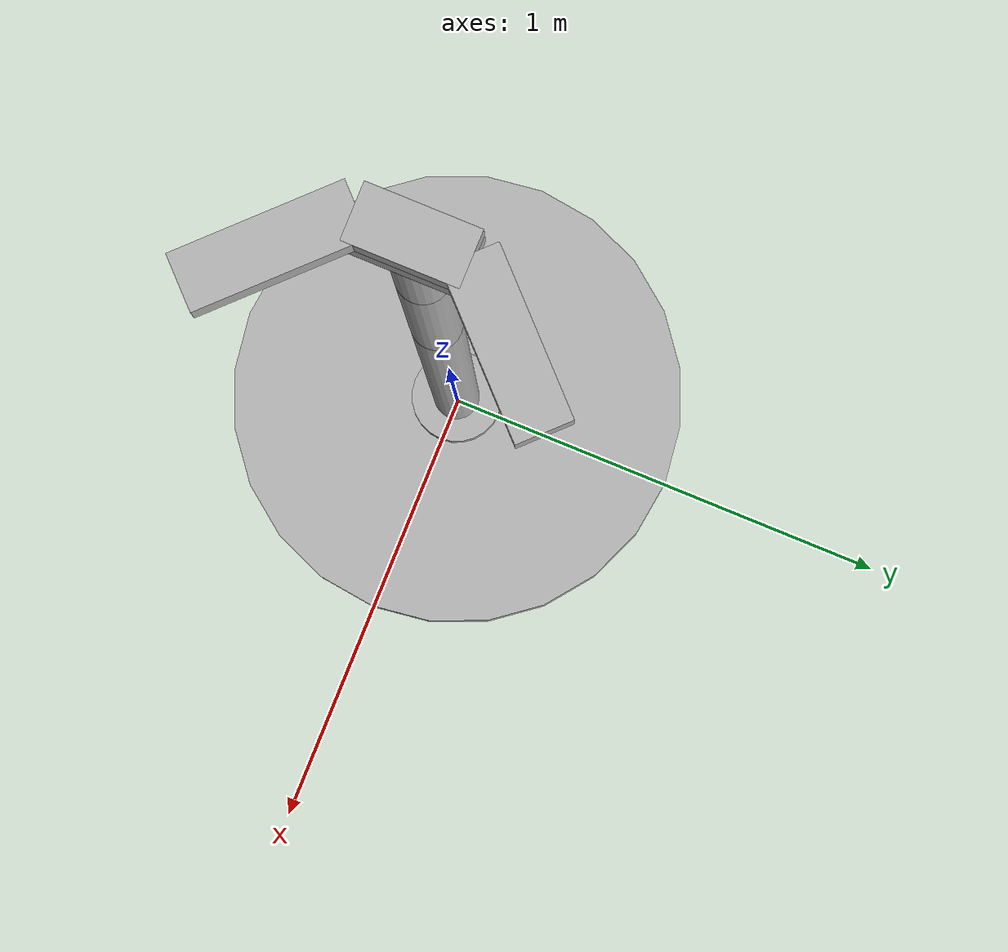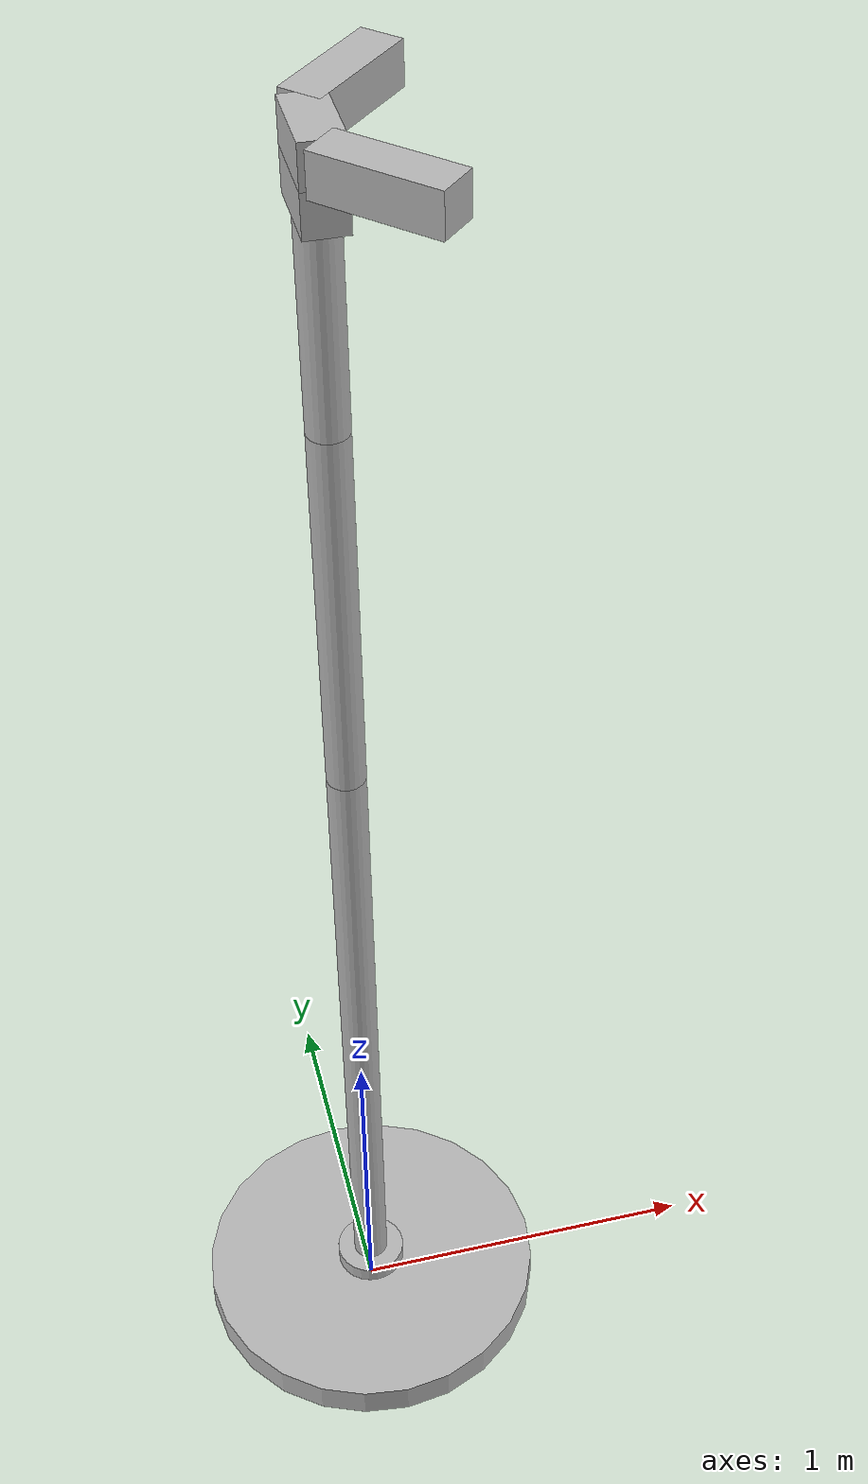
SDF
<?xml version="1.0"?>
<sdf version="1.4">
  <model name="my_robot">
    <static>false</static>
    <self_collide>1</self_collide>
    <link name="chasis">
      <pose>0 0 0.05 0 0 0</pose>
      <inertial>
        <mass>50.0</mass>
      </inertial>
      <collision name="collision">
        <geometry>
          <cylinder>
            <radius>0.5</radius>
            <length>.1</length>
          </cylinder>
        </geometry>
      </collision>
      <visual name="visual">
        <geometry>
          <cylinder>
            <radius>0.5</radius>
            <length>.1</length>
          </cylinder>
        </geometry>
      </visual>
    </link>

    <link name="arm1">
      <gravity>0</gravity>
      <pose>0 0 0.125 0 0 0</pose>
      <inertial>
        <mass>0.1</mass>
      </inertial>
      <collision name="collision">
        <geometry>
          <cylinder>
            <radius>0.1</radius>
            <length>.05</length>
          </cylinder>
        </geometry>
      </collision>
      <visual name="visual">
        <geometry>
          <cylinder>
            <radius>0.1</radius>
            <length>.05</length>
          </cylinder>
        </geometry>
      </visual>
    </link>
    <link name="arm2">
      <gravity>0</gravity>
      <inertial>
        <mass>0.5</mass>
      </inertial>
      <pose>0 0 1.15 0 0 0</pose>
      <collision name="collision">
        <geometry>
          <cylinder>
            <radius>0.05</radius>
            <length>2.0</length>
          </cylinder>
        </geometry>
      </collision>
      <visual name="visual">
        <geometry>
          <cylinder>
            <radius>0.05</radius>
            <length>2.0</length>
          </cylinder>
        </geometry>
      </visual>
    </link>
    <link name="arm3">
      <gravity>0</gravity>
      <pose>0 0 2.65 0 0 0</pose>
      <inertial>
        <mass>5</mass>
      </inertial>
      <collision name="collision">
        <geometry>
          <cylinder>
            <radius>0.05</radius>
            <length>1.0</length>
          </cylinder>
        </geometry>
      </collision>
      <visual name="visual">
        <geometry>
          <cylinder>
            <radius>0.05</radius>
            <length>1.0</length>
          </cylinder>
        </geometry>
      </visual>
    </link>
    <link name="arm4">
      <gravity>0</gravity>
      <pose>0 0 3.4 0 0 0</pose>
      <inertial>
        <mass>0.3</mass>
      </inertial>
      <collision name="collision">
        <geometry>
          <cylinder>
            <radius>0.05</radius>
            <length>0.5</length>
          </cylinder>
        </geometry>
      </collision>
      <visual name="visual">
        <geometry>
          <cylinder>
            <radius>0.05</radius>
            <length>0.5</length>
          </cylinder>
        </geometry>
      </visual>
    </link>
    <link name="arm5">
      <gravity>0</gravity>
      <pose>0.0 0.0 3.7 0 0 0</pose>
      <inertial>
        <inertia>
          <ixx>0.01</ixx>
          <ixy>0</ixy>
          <ixz>0</ixz>
          <iyy>0.01</iyy>
          <iyz>0</iyz>
          <izz>0.01</izz>
        </inertia>
        <mass>0.1</mass>
      </inertial>
      <collision name="collision">
        <geometry>
          <box>
            <size>0.1 0.2 0.1</size>
          </box>
        </geometry>
      </collision>
      <visual name="visual">
        <geometry>
          <box>
            <size>0.1 0.2 0.1</size>
          </box>
        </geometry>
      </visual>
    </link>
    <link name="palm">
      <gravity>0</gravity>
      <pose>0.0 0.0 3.8 0 0 0</pose>
      <inertial>
        <inertia>
          <ixx>0.01</ixx>
          <ixy>0</ixy>
          <ixz>0</ixz>
          <iyy>0.01</iyy>
          <iyz>0</iyz>
          <izz>0.01</izz>
        </inertia>
        <mass>0.1</mass>
      </inertial>
      <collision name="collision">
        <geometry>
          <box>
            <size>0.1 0.2 0.1</size>
          </box>
        </geometry>
      </collision>
      <visual name="visual">
        <geometry>
          <box>
            <size>0.1 0.2 0.1</size>
          </box>
        </geometry>
      </visual>
    </link>
    <link name="left_finger">
      <self_collide>1</self_collide>
      <pose>0.1 0.2 3.8 0 0 -0.78539</pose>
      <inertial>
        <inertia>
          <ixx>0.01</ixx>
          <ixy>0</ixy>
          <ixz>0</ixz>
          <iyy>0.01</iyy>
          <iyz>0</iyz>
          <izz>0.01</izz>
        </inertia>
        <mass>0.05</mass>
      </inertial>
      <collision name="collision">
        <geometry>
          <box>
            <size>0.1 0.3 0.1</size>
          </box>
        </geometry>
      </collision>
      <visual name="visual">
        <geometry>
          <box>
            <size>0.1 0.3 0.1</size>
          </box>
        </geometry>
      </visual>
    </link>

    <link name="right_finger">
      <self_collide>1</self_collide>
      <pose>0.1 -0.2 3.8 0 0 .78539</pose>
      <inertial>
        <inertia>
          <ixx>0.01</ixx>
          <ixy>0</ixy>
          <ixz>0</ixz>
          <iyy>0.01</iyy>
          <iyz>0</iyz>
          <izz>0.01</izz>
        </inertia>
        <mass>0.05</mass>
      </inertial>
      <collision name="collision">
        <geometry>
          <box>
            <size>0.1 0.3 0.1</size>
          </box>
        </geometry>
      </collision>
      <visual name="visual">
        <geometry>
          <box>
            <size>0.1 0.3 0.1</size>
          </box>
        </geometry>
      </visual>
    </link>

    <joint name="chasis_arm1_joint" type="revolute">
      <parent> chasis </parent>
      <child> arm1 </child>
      <pose> 0 0 -0.025 0 0 0 </pose>
      <axis>
        <xyz> 1 0 1  </xyz>
        <dynamics>
          <damping>1.0</damping>
          <friction>.3</friction>
          <limit>
            <lower>-1.0</lower>
            <upper>1.0</upper>
            <effort>40</effort>
            <velocity>1.0</velocity>
          </limit>
        </dynamics>
      </axis>
    </joint>

    <joint name="arm1_arm2_joint" type="revolute">
      <parent> arm1 </parent>
      <child> arm2 </child>
      <pose> 0 0 -1.0 0 0 0</pose>
      <axis>
        <xyz> 1 0 0  </xyz>
        <dynamics>
          <damping>1.0</damping>
          <friction>.3</friction>
          <limit>
            <lower>-1.0</lower>
            <upper>1.0</upper>
            <effort>40</effort>
            <velocity>1.0</velocity>
          </limit>
        </dynamics>
      </axis>
    </joint>
    <joint name="arm2_arm3_joint" type="revolute">
      <parent> arm2 </parent>
      <child> arm3 </child>
      <pose> 0 0 -0.5 0 0 0</pose>
      <axis>
        <xyz> 1 0 0  </xyz>
        <dynamics>
          <damping>1.0</damping>
          <friction>.3</friction>
          <limit>
            <lower>-1.0</lower>
            <upper>1.0</upper>
            <effort>40</effort>
            <velocity>1.0</velocity>
          </limit>
        </dynamics>
      </axis>
    </joint>
    <joint name="arm3_arm4_joint" type="revolute">
      <parent> arm3 </parent>
      <child> arm4 </child>
      <pose> 0 0 -0.25 0 0 0</pose>
      <axis>
        <xyz> 1 0 0  </xyz>
        <dynamics>
          <damping>1.0</damping>
          <friction>.3</friction>
          <limit>
            <lower>-1.0</lower>
            <upper>1.0</upper>
            <effort>40</effort>
            <velocity>1.0</velocity>
          </limit>
        </dynamics>
      </axis>
    </joint>
    <joint name="arm4_arm5_joint" type="revolute">
      <parent>arm4</parent>
      <child>arm5</child>
      <pose>0 0 -0.05 0 0 0</pose>
      <axis>
        <xyz>0 1 0</xyz>
      </axis>
    </joint>
    <joint name="arm5_palm_joint" type="revolute">
      <parent>arm5</parent>
      <child>palm</child>
      <pose>0 0 -0.05 0 0 0</pose>
      <axis>
          <dynamics>
          <damping>1.0</damping>
          <friction>.3</friction>
          <limit>
            <lower>-1.0</lower>
            <upper>1.0</upper>
            <effort>40</effort>
            <velocity>1.0</velocity>
          </limit>
        </dynamics>
        <xyz>0 0 1</xyz>
      </axis>
    </joint>
    <joint name="palm_left_finger" type="revolute">
      <pose>0 -0.15 0 0 0 0</pose>
      <child>left_finger</child>
      <parent>palm</parent>
      <axis>
          <dynamics>
          <damping>1.0</damping>
          <friction>.3</friction>
          <limit>
            <lower>-1.0</lower>
            <upper>1.0</upper>
            <effort>40</effort>
            <velocity>1.0</velocity>
          </limit>
        </dynamics>
        <xyz>0 0 1</xyz>
      </axis>
    </joint>
    <joint name="palm_right_finger" type="revolute">
      <pose>0 0.15 0 0 0 0</pose>
      <child>right_finger</child>
      <parent>palm</parent>
      <axis>
        <xyz>0 0 1</xyz>
          <dynamics>
          <damping>1.0</damping>
          <friction>.3</friction>
          <limit>
            <lower>-1.0</lower>
            <upper>1.0</upper>
            <effort>40</effort>
            <velocity>1.0</velocity>
          </limit>
        </dynamics>
      </axis>
    </joint>
    <plugin name="arm_control" filename="libarm_gazebo.so">
      <robotNamespace></robotNamespace>
    </plugin>
  </model>
</sdf>
